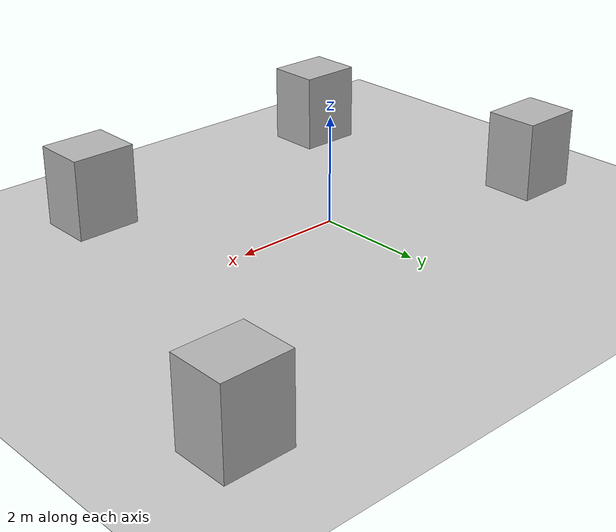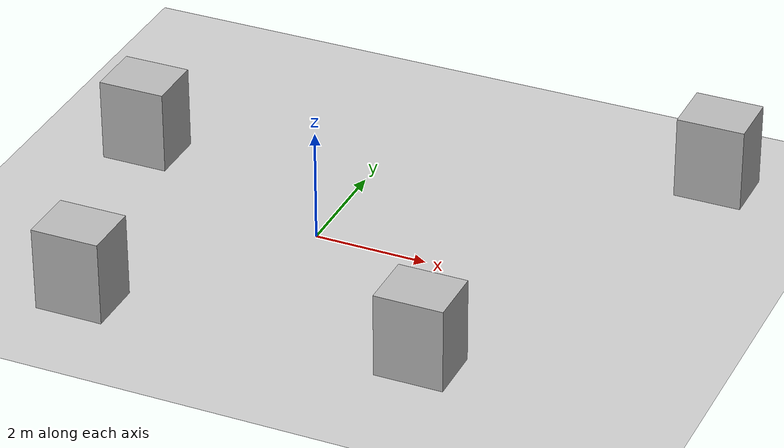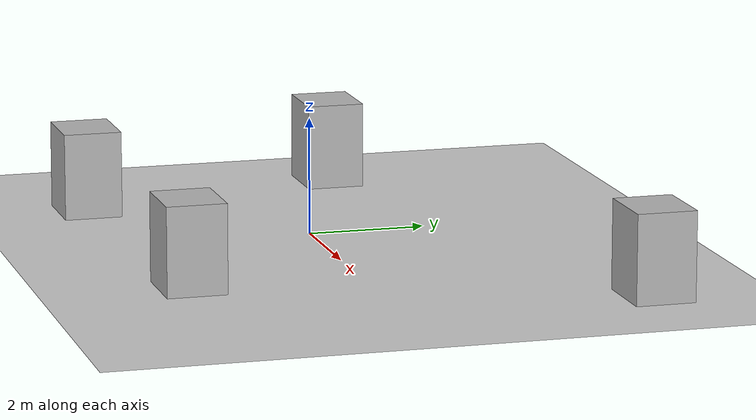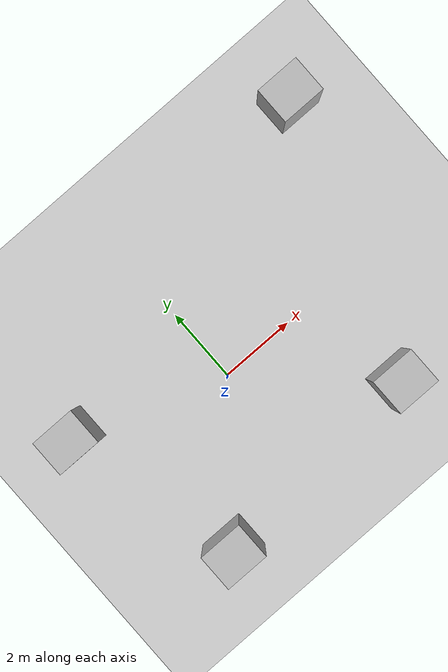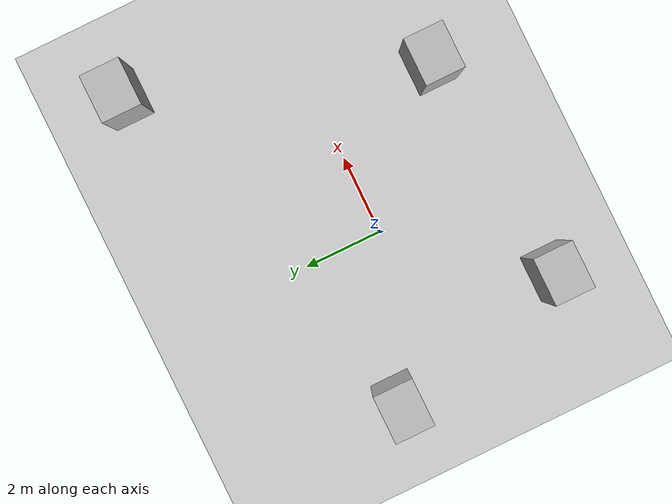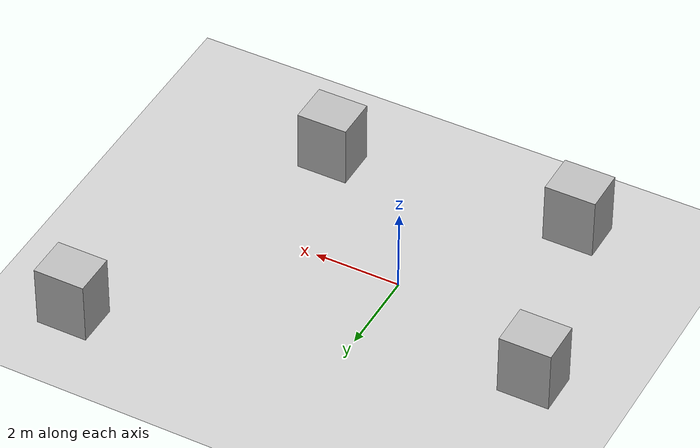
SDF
<sdf version="1.6">
 <world name="default">
  <light name="sun" type="directional">
   <pose>0 0 10 0 -0 0</pose>
   <diffuse>0.8 0.8 0.8 1</diffuse>
   <specular>0.2 0.2 0.2 1</specular>
   <attenuation>
    <range>1000</range>
    <constant>0.9</constant>
    <linear>0.01</linear>
    <quadratic>0.001</quadratic>
   </attenuation>
   <direction>-0.5 0.1 -0.9</direction>
  </light>
  <model name="ground_plane">
   <static>1</static>
   <link name="link">
    <collision name="collision">
     <geometry><plane><normal>0 0 1</normal><size>100 100</size></plane></geometry>
     <surface>
      <contact><collide_bitmask>65535</collide_bitmask></contact>
      <friction><ode><mu>100</mu><mu2>50</mu2></ode></friction>
     </surface>
    </collision>
    <visual name="visual">
     <cast_shadows>0</cast_shadows>
     <geometry><plane><normal>0 0 1</normal><size>100 100</size></plane></geometry>
     <material>
      <script><uri>file://media/materials/scripts/gazebo.material</uri><name>Gazebo/Grey</name></script>
     </material>
    </visual>
   </link>
  </model>
  <gravity>0 0 -9.8</gravity>
  <magnetic_field>6e-06 2.3e-05 -4.2e-05</magnetic_field>
  <atmosphere type="adiabatic"/>
  <physics name="default_physics" default="0" type="ode">
   <max_step_size>0.001</max_step_size>
   <real_time_factor>1</real_time_factor>
   <real_time_update_rate>1000</real_time_update_rate>
  </physics>
  <scene><ambient>0.4 0.4 0.4 1</ambient><background>0.7 0.7 0.7 1</background><shadows>1</shadows></scene>
  <spherical_coordinates>
   <surface_model>EARTH_WGS84</surface_model>
   <latitude_deg>0</latitude_deg>
   <longitude_deg>0</longitude_deg>
   <elevation>0</elevation>
   <heading_deg>0</heading_deg>
  </spherical_coordinates>
  <model name="Big box">
   <pose>-3.90626 1.37075 0.749715 0 -0.000471 0</pose>
   <static>0</static>
   <link name="link">
    <inertial>
     <mass>40</mass>
     <inertia><ixx>1</ixx><ixy>0</ixy><ixz>0</ixz><iyy>1</iyy><iyz>0</iyz><izz>1</izz></inertia>
    </inertial>
    <collision name="collision">
     <geometry><box><size>1.2 0.8 1.5</size></box></geometry>
     <surface><contact><ode><max_vel>0.1</max_vel><min_depth>0.001</min_depth></ode></contact></surface>
    </collision>
    <visual name="visual"><geometry><mesh><uri>model://big_box/meshes/big_box.dae</uri></mesh></geometry></visual>
   </link>
  </model>
  <model name="Big box_0">
   <pose>3.15095 -2.85868 0.749785 0 -0.000353 0</pose>
   <static>0</static>
   <link name="link">
    <inertial>
     <mass>40</mass>
     <inertia><ixx>1</ixx><ixy>0</ixy><ixz>0</ixz><iyy>1</iyy><iyz>0</iyz><izz>1</izz></inertia>
    </inertial>
    <collision name="collision">
     <geometry><box><size>1.2 0.8 1.5</size></box></geometry>
     <surface><contact><ode><max_vel>0.1</max_vel><min_depth>0.001</min_depth></ode></contact></surface>
    </collision>
    <visual name="visual"><geometry><mesh><uri>model://big_box/meshes/big_box.dae</uri></mesh></geometry></visual>
   </link>
  </model>
  <model name="Big box 2">
   <pose>-2.68372 -3.31026 0.749855 0 -0.000235 0</pose>
   <static>0</static>
   <link name="link">
    <inertial>
     <mass>40</mass>
     <inertia><ixx>1</ixx><ixy>0</ixy><ixz>0</ixz><iyy>1</iyy><iyz>0</iyz><izz>1</izz></inertia>
    </inertial>
    <collision name="collision">
     <geometry><box><size>1.2 0.8 1.5</size></box></geometry>
     <surface><contact><ode><max_vel>0.1</max_vel><min_depth>0.001</min_depth></ode></contact></surface>
    </collision>
    <visual name="visual">
     <geometry><mesh><uri>model://big_box2/meshes/big_box.dae</uri></mesh></geometry>
    </visual>
   </link>
  </model>
  <model name="Big box_1">
   <pose>5.64933 4.17188 0.749926 0 -0.000118 0</pose>
   <static>0</static>
   <link name="link">
    <inertial>
     <mass>40</mass>
     <inertia><ixx>1</ixx><ixy>0</ixy><ixz>0</ixz><iyy>1</iyy><iyz>0</iyz><izz>1</izz></inertia>
    </inertial>
    <collision name="collision">
     <geometry><box><size>1.2 0.8 1.5</size></box></geometry>
     <surface><contact><ode><max_vel>0.1</max_vel><min_depth>0.001</min_depth></ode></contact></surface>
    </collision>
    <visual name="visual"><geometry><mesh><uri>model://big_box/meshes/big_box.dae</uri></mesh></geometry></visual>
   </link>
  </model>
 </world>
</sdf>
